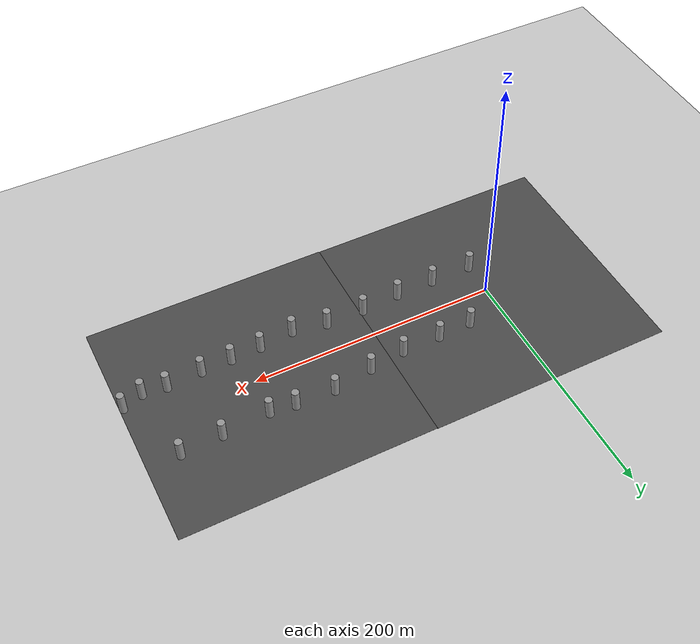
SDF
<sdf version="1.7">
 <world name="54world_world">
  <model name="ground_plane">
   <static>1</static>
   <link name="link">
    <collision name="collision">
     <geometry><plane><normal>0 0 1</normal><size>100 100</size></plane></geometry>
     <surface>
      <contact><collide_bitmask>65535</collide_bitmask></contact>
      <friction><ode><mu>100</mu><mu2>50</mu2></ode></friction>
     </surface>
    </collision>
    <visual name="visual">
     <cast_shadows>0</cast_shadows>
     <geometry><plane><normal>0 0 1</normal><size>100 100</size></plane></geometry>
     <material>
      <script><uri>file://media/materials/scripts/gazebo.material</uri><name>Gazebo/Grey</name></script>
     </material>
    </visual>
   </link>
  </model>
  <model name="asphalt_plane">
   <static>1</static>
   <link name="link">
    <collision name="collision"><geometry><box><size>200 200 0.1</size></box></geometry></collision>
    <visual name="visual">
     <cast_shadows>0</cast_shadows>
     <geometry><box><size>200 200 0.1</size></box></geometry>
     <material>
      <script>
       <uri>model://asphalt_plane/materials/scripts</uri>
       <uri>model://asphalt_plane/materials/textures</uri>
       <name>vrc/asphalt</name>
      </script>
     </material>
    </visual>
   </link>
  </model>
  <model name="asphalt_plane_clone">
   <static>1</static>
   <link name="link">
    <collision name="collision"><geometry><box><size>200 200 0.1</size></box></geometry></collision>
    <visual name="visual">
     <cast_shadows>0</cast_shadows>
     <geometry><box><size>200 200 0.1</size></box></geometry>
     <material>
      <script>
       <uri>model://asphalt_plane/materials/scripts</uri>
       <uri>model://asphalt_plane/materials/textures</uri>
       <name>vrc/asphalt</name>
      </script>
     </material>
    </visual>
   </link>
   <pose>199.997 -0.38779 0 0 -0 0</pose>
  </model>
  <model name="unit_cylinder">
   <pose>0.682783 25.5982 9.11595 1.6e-05 1.1e-05 0.409706</pose>
   <link name="link">
    <inertial>
     <mass>1</mass>
     <inertia><ixx>0.145833</ixx><ixy>0</ixy><ixz>0</ixz><iyy>0.145833</iyy><iyz>0</iyz><izz>0.125</izz></inertia>
    </inertial>
    <collision name="collision">
     <geometry><cylinder><radius>0.082733</radius><length>0.0551512</length></cylinder></geometry>
    </collision>
    <visual name="visual">
     <geometry><cylinder><radius>0.082733</radius><length>0.0551512</length></cylinder></geometry>
     <material>
      <script><name>Gazebo/Grey</name><uri>file://media/materials/scripts/gazebo.material</uri></script>
     </material>
    </visual>
   </link>
  </model>
  <model name="unit_cylinder_clone">
   <pose>29.5724 25.4966 9.11598 1.4e-05 -6e-05 0.418121</pose>
   <link name="link">
    <inertial>
     <mass>1</mass>
     <inertia><ixx>0.145833</ixx><ixy>0</ixy><ixz>0</ixz><iyy>0.145833</iyy><iyz>0</iyz><izz>0.125</izz></inertia>
    </inertial>
    <collision name="collision">
     <geometry><cylinder><radius>3.02176</radius><length>18.132</length></cylinder></geometry>
    </collision>
    <visual name="visual">
     <geometry><cylinder><radius>3.02176</radius><length>18.132</length></cylinder></geometry>
     <material>
      <script><name>Gazebo/Grey</name><uri>file://media/materials/scripts/gazebo.material</uri></script>
     </material>
    </visual>
   </link>
  </model>
  <model name="unit_cylinder_clone_0">
   <pose>57.5162 26.6132 9.11606 -1.5e-05 -5.9e-05 0.402295</pose>
   <link name="link">
    <inertial>
     <mass>1</mass>
     <inertia><ixx>0.145833</ixx><ixy>0</ixy><ixz>0</ixz><iyy>0.145833</iyy><iyz>0</iyz><izz>0.125</izz></inertia>
    </inertial>
    <collision name="collision">
     <geometry><cylinder><radius>3.02176</radius><length>18.132</length></cylinder></geometry>
    </collision>
    <visual name="visual">
     <geometry><cylinder><radius>3.02176</radius><length>18.132</length></cylinder></geometry>
     <material>
      <script><name>Gazebo/Grey</name><uri>file://media/materials/scripts/gazebo.material</uri></script>
     </material>
    </visual>
   </link>
  </model>
  <model name="unit_cylinder_clone_1">
   <pose>89.3024 27.0269 9.11604 4e-06 -3e-05 0.429501</pose>
   <link name="link">
    <inertial>
     <mass>1</mass>
     <inertia><ixx>0.145833</ixx><ixy>0</ixy><ixz>0</ixz><iyy>0.145833</iyy><iyz>0</iyz><izz>0.125</izz></inertia>
    </inertial>
    <collision name="collision">
     <geometry><cylinder><radius>3.02176</radius><length>18.132</length></cylinder></geometry>
    </collision>
    <visual name="visual">
     <geometry><cylinder><radius>3.02176</radius><length>18.132</length></cylinder></geometry>
     <material>
      <script><name>Gazebo/Grey</name><uri>file://media/materials/scripts/gazebo.material</uri></script>
     </material>
    </visual>
   </link>
  </model>
  <model name="unit_cylinder_clone_2">
   <pose>0.132753 -26.8604 9.11599 -2.4e-05 5.7e-05 0.355668</pose>
   <link name="link">
    <inertial>
     <mass>1</mass>
     <inertia><ixx>0.145833</ixx><ixy>0</ixy><ixz>0</ixz><iyy>0.145833</iyy><iyz>0</iyz><izz>0.125</izz></inertia>
    </inertial>
    <collision name="collision">
     <geometry><cylinder><radius>3.02176</radius><length>18.132</length></cylinder></geometry>
    </collision>
    <visual name="visual">
     <geometry><cylinder><radius>3.02176</radius><length>18.132</length></cylinder></geometry>
     <material>
      <script><name>Gazebo/Grey</name><uri>file://media/materials/scripts/gazebo.material</uri></script>
     </material>
    </visual>
   </link>
  </model>
  <model name="unit_cylinder_clone_3">
   <pose>34.3362 -26.7087 9.116 7e-06 -7.7e-05 0.342029</pose>
   <link name="link">
    <inertial>
     <mass>1</mass>
     <inertia><ixx>0.145833</ixx><ixy>0</ixy><ixz>0</ixz><iyy>0.145833</iyy><iyz>0</iyz><izz>0.125</izz></inertia>
    </inertial>
    <collision name="collision">
     <geometry><cylinder><radius>3.02176</radius><length>18.132</length></cylinder></geometry>
    </collision>
    <visual name="visual">
     <geometry><cylinder><radius>3.02176</radius><length>18.132</length></cylinder></geometry>
     <material>
      <script><name>Gazebo/Grey</name><uri>file://media/materials/scripts/gazebo.material</uri></script>
     </material>
    </visual>
   </link>
  </model>
  <model name="unit_cylinder_clone_4">
   <pose>66.1721 -26.231 9.11597 2e-05 -2.9e-05 0.369702</pose>
   <link name="link">
    <inertial>
     <mass>1</mass>
     <inertia><ixx>0.145833</ixx><ixy>0</ixy><ixz>0</ixz><iyy>0.145833</iyy><iyz>0</iyz><izz>0.125</izz></inertia>
    </inertial>
    <collision name="collision">
     <geometry><cylinder><radius>3.02176</radius><length>18.132</length></cylinder></geometry>
    </collision>
    <visual name="visual">
     <geometry><cylinder><radius>3.02176</radius><length>18.132</length></cylinder></geometry>
     <material>
      <script><name>Gazebo/Grey</name><uri>file://media/materials/scripts/gazebo.material</uri></script>
     </material>
    </visual>
   </link>
  </model>
  <model name="unit_cylinder_clone_5">
   <pose>97.803 -24.3623 9.11598 -2.8e-05 3.6e-05 0.415179</pose>
   <link name="link">
    <inertial>
     <mass>1</mass>
     <inertia><ixx>0.145833</ixx><ixy>0</ixy><ixz>0</ixz><iyy>0.145833</iyy><iyz>0</iyz><izz>0.125</izz></inertia>
    </inertial>
    <collision name="collision">
     <geometry><cylinder><radius>3.02176</radius><length>18.132</length></cylinder></geometry>
    </collision>
    <visual name="visual">
     <geometry><cylinder><radius>3.02176</radius><length>18.132</length></cylinder></geometry>
     <material>
      <script><name>Gazebo/Grey</name><uri>file://media/materials/scripts/gazebo.material</uri></script>
     </material>
    </visual>
   </link>
  </model>
  <model name="unit_cylinder_clone_6">
   <pose>118.851 30.7928 9.11602 6.8e-05 -4.2e-05 0.332254</pose>
   <link name="link">
    <inertial>
     <mass>1</mass>
     <inertia><ixx>0.145833</ixx><ixy>0</ixy><ixz>0</ixz><iyy>0.145833</iyy><iyz>0</iyz><izz>0.125</izz></inertia>
    </inertial>
    <collision name="collision">
     <geometry><cylinder><radius>3.02176</radius><length>18.132</length></cylinder></geometry>
    </collision>
    <visual name="visual">
     <geometry><cylinder><radius>3.02176</radius><length>18.132</length></cylinder></geometry>
     <material>
      <script><name>Gazebo/Grey</name><uri>file://media/materials/scripts/gazebo.material</uri></script>
     </material>
    </visual>
   </link>
  </model>
  <model name="unit_cylinder_clone_7">
   <pose>128.972 -24.7072 9.11606 -4.6e-05 -8.2e-05 0.345202</pose>
   <link name="link">
    <inertial>
     <mass>1</mass>
     <inertia><ixx>0.145833</ixx><ixy>0</ixy><ixz>0</ixz><iyy>0.145833</iyy><iyz>0</iyz><izz>0.125</izz></inertia>
    </inertial>
    <collision name="collision">
     <geometry><cylinder><radius>3.02176</radius><length>18.132</length></cylinder></geometry>
    </collision>
    <visual name="visual">
     <geometry><cylinder><radius>3.02176</radius><length>18.132</length></cylinder></geometry>
     <material>
      <script><name>Gazebo/Grey</name><uri>file://media/materials/scripts/gazebo.material</uri></script>
     </material>
    </visual>
   </link>
  </model>
  <model name="unit_cylinder_clone_8">
   <pose>151.607 36.2697 9.11609 -3.6e-05 -8.3e-05 0.342966</pose>
   <link name="link">
    <inertial>
     <mass>1</mass>
     <inertia><ixx>0.145833</ixx><ixy>0</ixy><ixz>0</ixz><iyy>0.145833</iyy><iyz>0</iyz><izz>0.125</izz></inertia>
    </inertial>
    <collision name="collision">
     <geometry><cylinder><radius>3.02176</radius><length>18.132</length></cylinder></geometry>
    </collision>
    <visual name="visual">
     <geometry><cylinder><radius>3.02176</radius><length>18.132</length></cylinder></geometry>
     <material>
      <script><name>Gazebo/Grey</name><uri>file://media/materials/scripts/gazebo.material</uri></script>
     </material>
    </visual>
   </link>
  </model>
  <model name="unit_cylinder_clone_9">
   <pose>156.451 -30.0918 9.11604 4.2e-05 -7.4e-05 0.365245</pose>
   <link name="link">
    <inertial>
     <mass>1</mass>
     <inertia><ixx>0.145833</ixx><ixy>0</ixy><ixz>0</ixz><iyy>0.145833</iyy><iyz>0</iyz><izz>0.125</izz></inertia>
    </inertial>
    <collision name="collision">
     <geometry><cylinder><radius>3.02176</radius><length>18.132</length></cylinder></geometry>
    </collision>
    <visual name="visual">
     <geometry><cylinder><radius>3.02176</radius><length>18.132</length></cylinder></geometry>
     <material>
      <script><name>Gazebo/Grey</name><uri>file://media/materials/scripts/gazebo.material</uri></script>
     </material>
    </visual>
   </link>
  </model>
  <model name="unit_cylinder_clone_10">
   <pose>183.149 35.3688 9.11601 1.8e-05 -7.7e-05 0.405582</pose>
   <link name="link">
    <inertial>
     <mass>1</mass>
     <inertia><ixx>0.145833</ixx><ixy>0</ixy><ixz>0</ixz><iyy>0.145833</iyy><iyz>0</iyz><izz>0.125</izz></inertia>
    </inertial>
    <collision name="collision">
     <geometry><cylinder><radius>3.02176</radius><length>18.132</length></cylinder></geometry>
    </collision>
    <visual name="visual">
     <geometry><cylinder><radius>3.02176</radius><length>18.132</length></cylinder></geometry>
     <material>
      <script><name>Gazebo/Grey</name><uri>file://media/materials/scripts/gazebo.material</uri></script>
     </material>
    </visual>
   </link>
  </model>
  <model name="unit_cylinder_clone_11">
   <pose>184.5 -26.8065 9.11607 3.1e-05 6.8e-05 0.38482</pose>
   <link name="link">
    <inertial>
     <mass>1</mass>
     <inertia><ixx>0.145833</ixx><ixy>0</ixy><ixz>0</ixz><iyy>0.145833</iyy><iyz>0</iyz><izz>0.125</izz></inertia>
    </inertial>
    <collision name="collision">
     <geometry><cylinder><radius>3.02176</radius><length>18.132</length></cylinder></geometry>
    </collision>
    <visual name="visual">
     <geometry><cylinder><radius>3.02176</radius><length>18.132</length></cylinder></geometry>
     <material>
      <script><name>Gazebo/Grey</name><uri>file://media/materials/scripts/gazebo.material</uri></script>
     </material>
    </visual>
   </link>
  </model>
  <model name="unit_cylinder_clone_12">
   <pose>203.11 32.7755 9.11599 2.9e-05 4e-05 0.4223</pose>
   <link name="link">
    <inertial>
     <mass>1</mass>
     <inertia><ixx>0.145833</ixx><ixy>0</ixy><ixz>0</ixz><iyy>0.145833</iyy><iyz>0</iyz><izz>0.125</izz></inertia>
    </inertial>
    <collision name="collision">
     <geometry><cylinder><radius>3.02176</radius><length>18.132</length></cylinder></geometry>
    </collision>
    <visual name="visual">
     <geometry><cylinder><radius>3.02176</radius><length>18.132</length></cylinder></geometry>
     <material>
      <script><name>Gazebo/Grey</name><uri>file://media/materials/scripts/gazebo.material</uri></script>
     </material>
    </visual>
   </link>
  </model>
  <model name="unit_cylinder_clone_13">
   <pose>209.037 -25.8274 9.11601 4.6e-05 -4.6e-05 0.395229</pose>
   <link name="link">
    <inertial>
     <mass>1</mass>
     <inertia><ixx>0.145833</ixx><ixy>0</ixy><ixz>0</ixz><iyy>0.145833</iyy><iyz>0</iyz><izz>0.125</izz></inertia>
    </inertial>
    <collision name="collision">
     <geometry><cylinder><radius>3.02176</radius><length>18.132</length></cylinder></geometry>
    </collision>
    <visual name="visual">
     <geometry><cylinder><radius>3.02176</radius><length>18.132</length></cylinder></geometry>
     <material>
      <script><name>Gazebo/Grey</name><uri>file://media/materials/scripts/gazebo.material</uri></script>
     </material>
    </visual>
   </link>
  </model>
  <model name="unit_cylinder_clone_14">
   <pose>241.248 35.6859 9.11599 4.2e-05 2e-05 0.429783</pose>
   <link name="link">
    <inertial>
     <mass>1</mass>
     <inertia><ixx>0.145833</ixx><ixy>0</ixy><ixz>0</ixz><iyy>0.145833</iyy><iyz>0</iyz><izz>0.125</izz></inertia>
    </inertial>
    <collision name="collision">
     <geometry><cylinder><radius>3.02176</radius><length>18.132</length></cylinder></geometry>
    </collision>
    <visual name="visual">
     <geometry><cylinder><radius>3.02176</radius><length>18.132</length></cylinder></geometry>
     <material>
      <script><name>Gazebo/Grey</name><uri>file://media/materials/scripts/gazebo.material</uri></script>
     </material>
    </visual>
   </link>
  </model>
  <model name="unit_cylinder_clone_15">
   <pose>233.363 -25.3991 9.11596 2.9e-05 2.6e-05 0.39637</pose>
   <link name="link">
    <inertial>
     <mass>1</mass>
     <inertia><ixx>0.145833</ixx><ixy>0</ixy><ixz>0</ixz><iyy>0.145833</iyy><iyz>0</iyz><izz>0.125</izz></inertia>
    </inertial>
    <collision name="collision">
     <geometry><cylinder><radius>3.02176</radius><length>18.132</length></cylinder></geometry>
    </collision>
    <visual name="visual">
     <geometry><cylinder><radius>3.02176</radius><length>18.132</length></cylinder></geometry>
     <material>
      <script><name>Gazebo/Grey</name><uri>file://media/materials/scripts/gazebo.material</uri></script>
     </material>
    </visual>
   </link>
  </model>
  <model name="unit_cylinder_clone_16">
   <pose>261.546 -23.6465 9.11595 1.4e-05 -2e-05 0.416566</pose>
   <link name="link">
    <inertial>
     <mass>1</mass>
     <inertia><ixx>0.145833</ixx><ixy>0</ixy><ixz>0</ixz><iyy>0.145833</iyy><iyz>0</iyz><izz>0.125</izz></inertia>
    </inertial>
    <collision name="collision">
     <geometry><cylinder><radius>3.02176</radius><length>18.132</length></cylinder></geometry>
    </collision>
    <visual name="visual">
     <geometry><cylinder><radius>3.02176</radius><length>18.132</length></cylinder></geometry>
     <material>
      <script><name>Gazebo/Grey</name><uri>file://media/materials/scripts/gazebo.material</uri></script>
     </material>
    </visual>
   </link>
  </model>
  <model name="unit_cylinder_clone_17">
   <pose>274.088 37.3257 9.11599 4.8e-05 2.3e-05 0.441531</pose>
   <link name="link">
    <inertial>
     <mass>1</mass>
     <inertia><ixx>0.145833</ixx><ixy>0</ixy><ixz>0</ixz><iyy>0.145833</iyy><iyz>0</iyz><izz>0.125</izz></inertia>
    </inertial>
    <collision name="collision">
     <geometry><cylinder><radius>3.02176</radius><length>18.132</length></cylinder></geometry>
    </collision>
    <visual name="visual">
     <geometry><cylinder><radius>3.02176</radius><length>18.132</length></cylinder></geometry>
     <material>
      <script><name>Gazebo/Grey</name><uri>file://media/materials/scripts/gazebo.material</uri></script>
     </material>
    </visual>
   </link>
  </model>
  <model name="unit_cylinder_clone_18">
   <pose>280.378 -25.8666 9.116 -1.5e-05 -8e-06 0.410742</pose>
   <link name="link">
    <inertial>
     <mass>1</mass>
     <inertia><ixx>0.145833</ixx><ixy>0</ixy><ixz>0</ixz><iyy>0.145833</iyy><iyz>0</iyz><izz>0.125</izz></inertia>
    </inertial>
    <collision name="collision">
     <geometry><cylinder><radius>3.02176</radius><length>18.132</length></cylinder></geometry>
    </collision>
    <visual name="visual">
     <geometry><cylinder><radius>3.02176</radius><length>18.132</length></cylinder></geometry>
     <material>
      <script><name>Gazebo/Grey</name><uri>file://media/materials/scripts/gazebo.material</uri></script>
     </material>
    </visual>
   </link>
  </model>
  <model name="unit_cylinder_clone_20">
   <pose>297.103 -20.0783 9.11595 -1.8e-05 -1e-06 0.468092</pose>
   <link name="link">
    <inertial>
     <mass>1</mass>
     <inertia><ixx>0.145833</ixx><ixy>0</ixy><ixz>0</ixz><iyy>0.145833</iyy><iyz>0</iyz><izz>0.125</izz></inertia>
    </inertial>
    <collision name="collision">
     <geometry><cylinder><radius>3.02176</radius><length>18.132</length></cylinder></geometry>
    </collision>
    <visual name="visual">
     <geometry><cylinder><radius>3.02176</radius><length>18.132</length></cylinder></geometry>
     <material>
      <script><name>Gazebo/Grey</name><uri>file://media/materials/scripts/gazebo.material</uri></script>
     </material>
    </visual>
   </link>
  </model>
 </world>
</sdf>
